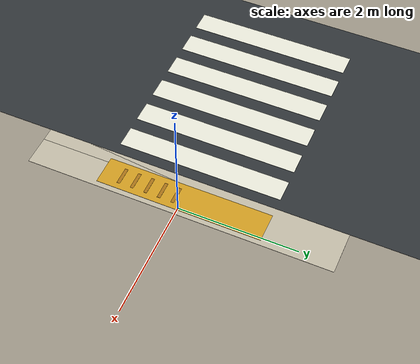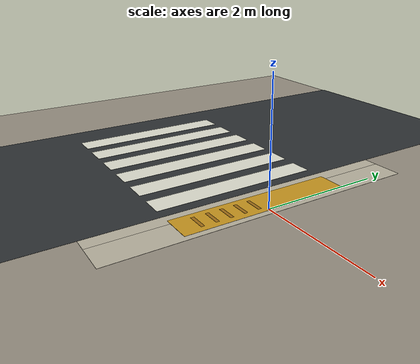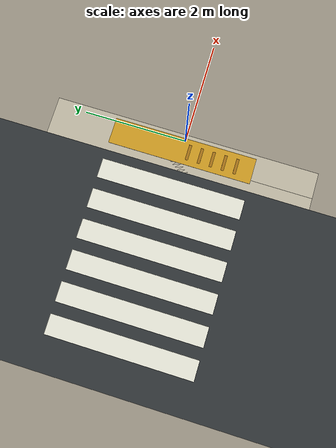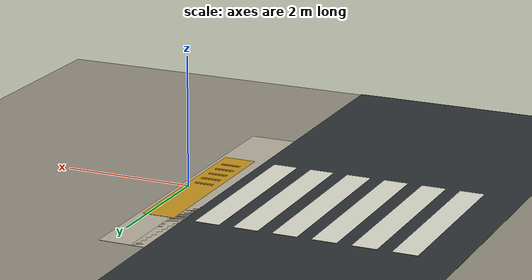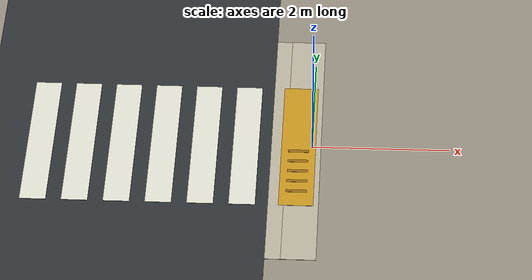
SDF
<sdf version="1.10">
 <world name="swan_market">
  <model name="ground">
   <static>true</static>
   <pose>15 0 -0.1 0 0 0</pose>
   <link name="body">
    <collision name="box_collision"><geometry><box><size>46 24 0.2</size></box></geometry></collision>
    <visual name="box_visual">
     <geometry><box><size>46 24 0.2</size></box></geometry>
     <material><ambient>0.64 0.61 0.55 1</ambient><diffuse>0.64 0.61 0.55 1</diffuse></material>
    </visual>
   </link>
  </model>
  <model name="market_paving_0">
   <static>true</static>
   <pose>-1.75 0 0.002 0 0 0</pose>
   <link name="body">
    <visual name="box_visual">
     <geometry><box><size>0.75 5.2 0.004</size></box></geometry>
     <material><ambient>0.79 0.76 0.68 1</ambient><diffuse>0.79 0.76 0.68 1</diffuse></material>
    </visual>
   </link>
  </model>
  <model name="paving_joint_0">
   <static>true</static>
   <pose>-1.75 0 0.0045 0 0 0</pose>
   <link name="body">
    <visual name="box_visual">
     <geometry><box><size>0.025 5.2 0.001</size></box></geometry>
     <material><ambient>0.67 0.64 0.57 1</ambient><diffuse>0.67 0.64 0.57 1</diffuse></material>
    </visual>
   </link>
  </model>
  <model name="market_paving_1">
   <static>true</static>
   <pose>-1.25 0 0.002 0 0 0</pose>
   <link name="body">
    <visual name="box_visual">
     <geometry><box><size>0.75 5.2 0.004</size></box></geometry>
     <material><ambient>0.79 0.76 0.68 1</ambient><diffuse>0.79 0.76 0.68 1</diffuse></material>
    </visual>
   </link>
  </model>
  <model name="market_paving_2">
   <static>true</static>
   <pose>-0.75 0 0.002 0 0 0</pose>
   <link name="body">
    <visual name="box_visual">
     <geometry><box><size>0.75 5.2 0.004</size></box></geometry>
     <material><ambient>0.79 0.76 0.68 1</ambient><diffuse>0.79 0.76 0.68 1</diffuse></material>
    </visual>
   </link>
  </model>
  <model name="paving_joint_2">
   <static>true</static>
   <pose>-0.75 0 0.0045 0 0 0</pose>
   <link name="body">
    <visual name="box_visual">
     <geometry><box><size>0.025 5.2 0.001</size></box></geometry>
     <material><ambient>0.67 0.64 0.57 1</ambient><diffuse>0.67 0.64 0.57 1</diffuse></material>
    </visual>
   </link>
  </model>
  <model name="market_paving_3">
   <static>true</static>
   <pose>-0.25 0 0.002 0 0 0</pose>
   <link name="body">
    <visual name="box_visual">
     <geometry><box><size>0.75 5.2 0.004</size></box></geometry>
     <material><ambient>0.79 0.76 0.68 1</ambient><diffuse>0.79 0.76 0.68 1</diffuse></material>
    </visual>
   </link>
  </model>
  <model name="entrance_road">
   <static>true</static>
   <pose>-2.7 0 0.01 0 0 0</pose>
   <link name="body">
    <visual name="box_visual">
     <geometry><box><size>4.2 16 0.004</size></box></geometry>
     <material><ambient>0.2 0.22 0.23 1</ambient><diffuse>0.2 0.22 0.23 1</diffuse></material>
    </visual>
   </link>
  </model>
  <model name="crosswalk_stripe_1">
   <static>true</static>
   <pose>-3.97 0 0.016 0 0 0</pose>
   <link name="body">
    <visual name="box_visual">
     <geometry><box><size>0.38 2.8 0.003</size></box></geometry>
     <material><ambient>0.95 0.95 0.89 1</ambient><diffuse>0.95 0.95 0.89 1</diffuse></material>
    </visual>
   </link>
  </model>
  <model name="crosswalk_stripe_2">
   <static>true</static>
   <pose>-3.37 0 0.016 0 0 0</pose>
   <link name="body">
    <visual name="box_visual">
     <geometry><box><size>0.38 2.8 0.003</size></box></geometry>
     <material><ambient>0.95 0.95 0.89 1</ambient><diffuse>0.95 0.95 0.89 1</diffuse></material>
    </visual>
   </link>
  </model>
  <model name="crosswalk_stripe_3">
   <static>true</static>
   <pose>-2.77 0 0.016 0 0 0</pose>
   <link name="body">
    <visual name="box_visual">
     <geometry><box><size>0.38 2.8 0.003</size></box></geometry>
     <material><ambient>0.95 0.95 0.89 1</ambient><diffuse>0.95 0.95 0.89 1</diffuse></material>
    </visual>
   </link>
  </model>
  <model name="crosswalk_stripe_4">
   <static>true</static>
   <pose>-2.17 0 0.016 0 0 0</pose>
   <link name="body">
    <visual name="box_visual">
     <geometry><box><size>0.38 2.8 0.003</size></box></geometry>
     <material><ambient>0.95 0.95 0.89 1</ambient><diffuse>0.95 0.95 0.89 1</diffuse></material>
    </visual>
   </link>
  </model>
  <model name="crosswalk_stripe_5">
   <static>true</static>
   <pose>-1.57 0 0.016 0 0 0</pose>
   <link name="body">
    <visual name="box_visual">
     <geometry><box><size>0.38 2.8 0.003</size></box></geometry>
     <material><ambient>0.95 0.95 0.89 1</ambient><diffuse>0.95 0.95 0.89 1</diffuse></material>
    </visual>
   </link>
  </model>
  <model name="crosswalk_stripe_6">
   <static>true</static>
   <pose>-0.97 0 0.016 0 0 0</pose>
   <link name="body">
    <visual name="box_visual">
     <geometry><box><size>0.38 2.8 0.003</size></box></geometry>
     <material><ambient>0.95 0.95 0.89 1</ambient><diffuse>0.95 0.95 0.89 1</diffuse></material>
    </visual>
   </link>
  </model>
  <model name="crosswalk_tactile_1">
   <static>true</static>
   <pose>-0.2 0 0.019 0 0 0</pose>
   <link name="body">
    <visual name="box_visual">
     <geometry><box><size>0.5 2.8 0.003</size></box></geometry>
     <material><ambient>0.85 0.64 0.14 1</ambient><diffuse>0.85 0.64 0.14 1</diffuse></material>
    </visual>
   </link>
  </model>
  <model name="tactile_mark_1_1">
   <static>true</static>
   <pose>-0.2 -1.065 0.022 0 0 0</pose>
   <link name="body">
    <visual name="box_visual">
     <geometry><box><size>0.3 0.055 0.002</size></box></geometry>
     <material><ambient>0.69 0.47 0.1 1</ambient><diffuse>0.69 0.47 0.1 1</diffuse></material>
    </visual>
   </link>
  </model>
  <model name="tactile_mark_1_2">
   <static>true</static>
   <pose>-0.2 -0.83 0.022 0 0 0</pose>
   <link name="body">
    <visual name="box_visual">
     <geometry><box><size>0.3 0.055 0.002</size></box></geometry>
     <material><ambient>0.69 0.47 0.1 1</ambient><diffuse>0.69 0.47 0.1 1</diffuse></material>
    </visual>
   </link>
  </model>
  <model name="tactile_mark_1_3">
   <static>true</static>
   <pose>-0.2 -0.595 0.022 0 0 0</pose>
   <link name="body">
    <visual name="box_visual">
     <geometry><box><size>0.3 0.055 0.002</size></box></geometry>
     <material><ambient>0.69 0.47 0.1 1</ambient><diffuse>0.69 0.47 0.1 1</diffuse></material>
    </visual>
   </link>
  </model>
  <model name="tactile_mark_1_4">
   <static>true</static>
   <pose>-0.2 -0.36 0.022 0 0 0</pose>
   <link name="body">
    <visual name="box_visual">
     <geometry><box><size>0.3 0.055 0.002</size></box></geometry>
     <material><ambient>0.69 0.47 0.1 1</ambient><diffuse>0.69 0.47 0.1 1</diffuse></material>
    </visual>
   </link>
  </model>
  <model name="tactile_mark_1_5">
   <static>true</static>
   <pose>-0.2 -0.125 0.022 0 0 0</pose>
   <link name="body">
    <visual name="box_visual">
     <geometry><box><size>0.3 0.055 0.002</size></box></geometry>
     <material><ambient>0.69 0.47 0.1 1</ambient><diffuse>0.69 0.47 0.1 1</diffuse></material>
    </visual>
   </link>
  </model>
 </world>
</sdf>
